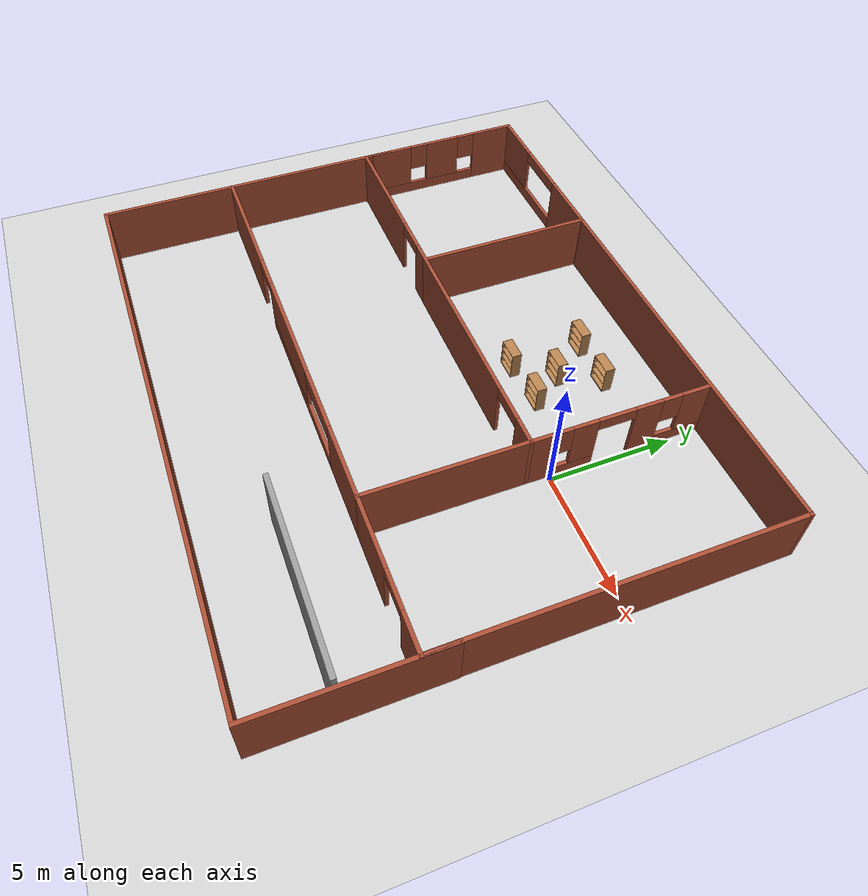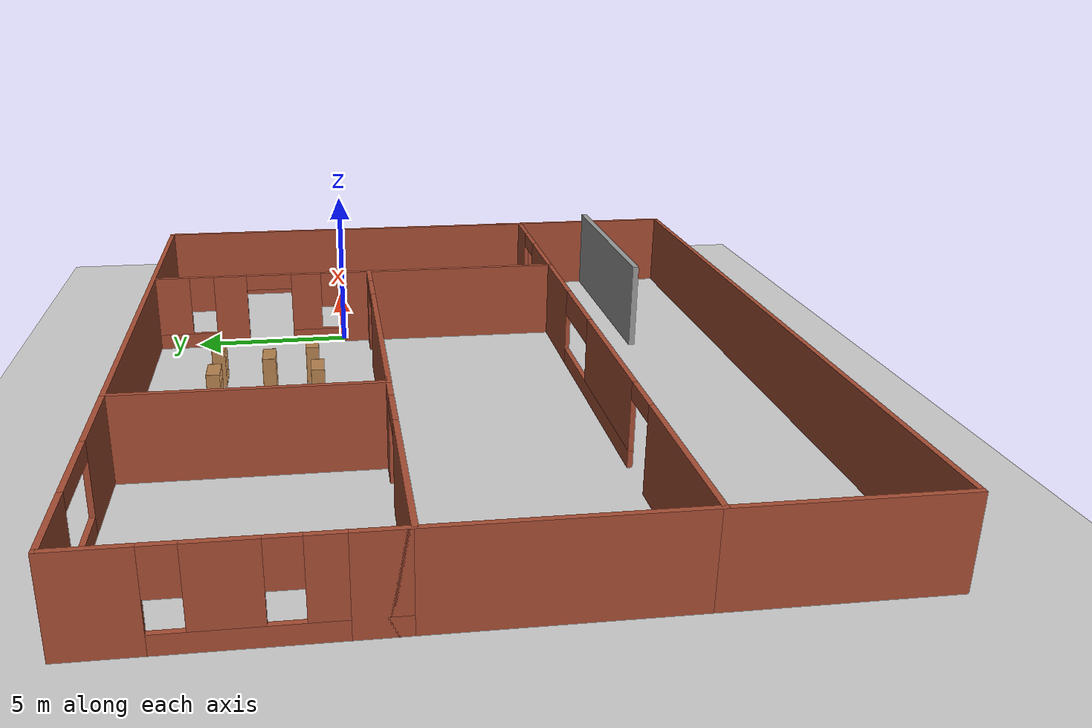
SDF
<sdf version="1.6">
 <world name="default">
  <model name="ground_plane">
   <static>1</static>
   <link name="link">
    <collision name="collision">
     <geometry><plane><normal>0 0 1</normal><size>100 100</size></plane></geometry>
     <surface><friction><ode><mu>100</mu><mu2>50</mu2></ode></friction></surface>
    </collision>
    <visual name="visual">
     <cast_shadows>0</cast_shadows>
     <geometry><plane><normal>0 0 1</normal><size>100 100</size></plane></geometry>
     <material>
      <script><uri>file://media/materials/scripts/gazebo.material</uri><name>Gazebo/Grey</name></script>
     </material>
    </visual>
   </link>
  </model>
  <model name="FourRoomObstacles">
   <pose>-6.06044 -3.26478 0 0 -0 0</pose>
   <link name="Wall_0">
    <collision name="Wall_0_Collision">
     <geometry><box><size>7.25 0.15 2.5</size></box></geometry>
     <pose>0 0 1.25 0 -0 0</pose>
    </collision>
    <visual name="Wall_0_Visual">
     <pose>0 0 1.25 0 -0 0</pose>
     <geometry><box><size>7.25 0.15 2.5</size></box></geometry>
     <material>
      <script><uri>file://media/materials/scripts/gazebo.material</uri><name>Gazebo/Bricks</name></script>
      <ambient>1 1 1 1</ambient>
     </material>
     <meta><layer>0</layer></meta>
    </visual>
    <pose>-4.1674 6.0064 0 0 0 -1.5708</pose>
   </link>
   <link name="Wall_1">
    <pose>0.848211 2.35 0 0 -0 0</pose>
    <visual name="Wall_1_Visual_0">
     <pose>-1.33123 0 1.25 0 -0 0</pose>
     <geometry><box><size>7.51932 0.15 2.5</size></box></geometry>
     <material>
      <script><uri>file://media/materials/scripts/gazebo.material</uri><name>Gazebo/Bricks</name></script>
      <ambient>1 1 1 1</ambient>
     </material>
     <meta><layer>0</layer></meta>
    </visual>
    <collision name="Wall_1_Collision_0">
     <geometry><box><size>7.51932 0.15 2.5</size></box></geometry>
     <pose>-1.33123 0 1.25 0 -0 0</pose>
    </collision>
    <visual name="Wall_1_Visual_1">
     <pose>4.50966 0 1.25 0 -0 0</pose>
     <geometry><box><size>1.16246 0.15 2.5</size></box></geometry>
     <material>
      <script><uri>file://media/materials/scripts/gazebo.material</uri><name>Gazebo/Bricks</name></script>
      <ambient>1 1 1 1</ambient>
     </material>
     <meta><layer>0</layer></meta>
    </visual>
    <collision name="Wall_1_Collision_1">
     <geometry><box><size>1.16246 0.15 2.5</size></box></geometry>
     <pose>4.50966 0 1.25 0 -0 0</pose>
    </collision>
    <visual name="Wall_1_Visual_2">
     <pose>3.17843 0 2.25 0 -0 0</pose>
     <geometry><box><size>1.5 0.15 0.5</size></box></geometry>
     <material>
      <script><uri>file://media/materials/scripts/gazebo.material</uri><name>Gazebo/Bricks</name></script>
      <ambient>1 1 1 1</ambient>
     </material>
     <meta><layer>0</layer></meta>
    </visual>
    <collision name="Wall_1_Collision_2">
     <geometry><box><size>1.5 0.15 0.5</size></box></geometry>
     <pose>3.17843 0 2.25 0 -0 0</pose>
    </collision>
   </link>
   <link name="Wall_10">
    <pose>-7.81118 2.3564 0 0 -0 0</pose>
    <visual name="Wall_10_Visual_0">
     <pose>-1.3934 0 1.25 0 -0 0</pose>
     <geometry><box><size>5.2132 0.15 2.5</size></box></geometry>
     <material>
      <script><uri>file://media/materials/scripts/gazebo.material</uri><name>Gazebo/Bricks</name></script>
      <ambient>1 1 1 1</ambient>
     </material>
     <meta><layer>0</layer></meta>
    </visual>
    <collision name="Wall_10_Collision_0">
     <geometry><box><size>5.2132 0.15 2.5</size></box></geometry>
     <pose>-1.3934 0 1.25 0 -0 0</pose>
    </collision>
    <visual name="Wall_10_Visual_1">
     <pose>3.3566 0 1.25 0 -0 0</pose>
     <geometry><box><size>1.2868 0.15 2.5</size></box></geometry>
     <material>
      <script><uri>file://media/materials/scripts/gazebo.material</uri><name>Gazebo/Bricks</name></script>
      <ambient>1 1 1 1</ambient>
     </material>
     <meta><layer>0</layer></meta>
    </visual>
    <collision name="Wall_10_Collision_1">
     <geometry><box><size>1.2868 0.15 2.5</size></box></geometry>
     <pose>3.3566 0 1.25 0 -0 0</pose>
    </collision>
    <visual name="Wall_10_Visual_2">
     <pose>1.9632 0 2.25 0 -0 0</pose>
     <geometry><box><size>1.5 0.15 0.5</size></box></geometry>
     <material>
      <script><uri>file://media/materials/scripts/gazebo.material</uri><name>Gazebo/Bricks</name></script>
      <ambient>1 1 1 1</ambient>
     </material>
     <meta><layer>0</layer></meta>
    </visual>
    <collision name="Wall_10_Collision_2">
     <geometry><box><size>1.5 0.15 0.5</size></box></geometry>
     <pose>1.9632 0 2.25 0 -0 0</pose>
    </collision>
   </link>
   <link name="Wall_12">
    <pose>-2.93618 -4 0 0 -0 3.14159</pose>
    <visual name="Wall_12_Visual_0">
     <pose>-7.28912 0 1.25 0 -0 0</pose>
     <geometry><box><size>3.17176 0.15 2.5</size></box></geometry>
     <material>
      <script><uri>file://media/materials/scripts/gazebo.material</uri><name>Gazebo/Bricks</name></script>
      <ambient>1 1 1 1</ambient>
     </material>
     <meta><layer>0</layer></meta>
    </visual>
    <collision name="Wall_12_Collision_0">
     <geometry><box><size>3.17176 0.15 2.5</size></box></geometry>
     <pose>-7.28912 0 1.25 0 -0 0</pose>
    </collision>
    <visual name="Wall_12_Visual_1">
     <pose>6.22094 0 1.25 0 -0 0</pose>
     <geometry><box><size>5.30812 0.15 2.5</size></box></geometry>
     <material>
      <script><uri>file://media/materials/scripts/gazebo.material</uri><name>Gazebo/Bricks</name></script>
      <ambient>1 1 1 1</ambient>
     </material>
     <meta><layer>0</layer></meta>
    </visual>
    <collision name="Wall_12_Collision_1">
     <geometry><box><size>5.30812 0.15 2.5</size></box></geometry>
     <pose>6.22094 0 1.25 0 -0 0</pose>
    </collision>
    <visual name="Wall_12_Visual_2">
     <pose>-1.81818 0 0.25 0 -0 0</pose>
     <geometry><box><size>7.77011 0.15 0.5</size></box></geometry>
     <material>
      <script><uri>file://media/materials/scripts/gazebo.material</uri><name>Gazebo/Bricks</name></script>
      <ambient>1 1 1 1</ambient>
     </material>
     <meta><layer>0</layer></meta>
    </visual>
    <collision name="Wall_12_Collision_2">
     <geometry><box><size>7.77011 0.15 0.5</size></box></geometry>
     <pose>-1.81818 0 0.25 0 -0 0</pose>
    </collision>
    <visual name="Wall_12_Visual_3">
     <pose>-0.418181 0 1.5 0 -0 0</pose>
     <geometry><box><size>4.97011 0.15 2</size></box></geometry>
     <material>
      <script><uri>file://media/materials/scripts/gazebo.material</uri><name>Gazebo/Bricks</name></script>
      <ambient>1 1 1 1</ambient>
     </material>
     <meta><layer>0</layer></meta>
    </visual>
    <collision name="Wall_12_Collision_3">
     <geometry><box><size>4.97011 0.15 2</size></box></geometry>
     <pose>-0.418181 0 1.5 0 -0 0</pose>
    </collision>
    <visual name="Wall_12_Visual_4">
     <pose>-4.30324 0 2.1 0 -0 0</pose>
     <geometry><box><size>2.8 0.15 0.8</size></box></geometry>
     <material>
      <script><uri>file://media/materials/scripts/gazebo.material</uri><name>Gazebo/Bricks</name></script>
      <ambient>1 1 1 1</ambient>
     </material>
     <meta><layer>0</layer></meta>
    </visual>
    <collision name="Wall_12_Collision_4">
     <geometry><box><size>2.8 0.15 0.8</size></box></geometry>
     <pose>-4.30324 0 2.1 0 -0 0</pose>
    </collision>
    <visual name="Wall_12_Visual_5">
     <pose>2.81688 0 2.25 0 -0 0</pose>
     <geometry><box><size>1.5 0.15 0.5</size></box></geometry>
     <material>
      <script><uri>file://media/materials/scripts/gazebo.material</uri><name>Gazebo/Bricks</name></script>
      <ambient>1 1 1 1</ambient>
     </material>
     <meta><layer>0</layer></meta>
    </visual>
    <collision name="Wall_12_Collision_5">
     <geometry><box><size>1.5 0.15 0.5</size></box></geometry>
     <pose>2.81688 0 2.25 0 -0 0</pose>
    </collision>
   </link>
   <link name="Wall_13">
    <collision name="Wall_13_Collision">
     <geometry><box><size>7.75 0.15 2.5</size></box></geometry>
     <pose>0 0 1.25 0 -0 0</pose>
    </collision>
    <visual name="Wall_13_Visual">
     <pose>0 0 1.25 0 -0 0</pose>
     <geometry><box><size>7.75 0.15 2.5</size></box></geometry>
     <material>
      <script><uri>file://media/materials/scripts/gazebo.material</uri><name>Gazebo/Bricks</name></script>
      <ambient>1 1 1 1</ambient>
     </material>
     <meta><layer>0</layer></meta>
    </visual>
    <pose>-11.7362 -0.2 0 0 -0 1.5708</pose>
   </link>
   <link name="Wall_15">
    <collision name="Wall_15_Collision">
     <geometry><box><size>5.75 0.15 2.5</size></box></geometry>
     <pose>0 0 1.25 0 -0 0</pose>
    </collision>
    <visual name="Wall_15_Visual">
     <pose>0 0 1.25 0 -0 0</pose>
     <geometry><box><size>5.75 0.15 2.5</size></box></geometry>
     <material>
      <script><uri>file://media/materials/scripts/gazebo.material</uri><name>Gazebo/Bricks</name></script>
      <ambient>1 1 1 1</ambient>
     </material>
     <meta><layer>0</layer></meta>
    </visual>
    <pose>-11.7362 -6.8 0 0 0 -1.5708</pose>
   </link>
   <link name="Wall_16">
    <collision name="Wall_16_Collision">
     <geometry><box><size>23.6224 0.15 2.5</size></box></geometry>
     <pose>0 0 1.25 0 -0 0</pose>
    </collision>
    <visual name="Wall_16_Visual">
     <pose>0 0 1.25 0 -0 0</pose>
     <geometry><box><size>23.6224 0.15 2.5</size></box></geometry>
     <material>
      <script><uri>file://media/materials/scripts/gazebo.material</uri><name>Gazebo/Bricks</name></script>
      <ambient>1 1 1 1</ambient>
     </material>
     <meta><layer>0</layer></meta>
    </visual>
    <pose>0 -9.6 0 0 -0 0</pose>
   </link>
   <link name="Wall_17">
    <collision name="Wall_17_Collision">
     <geometry><box><size>7 0.15 2.5</size></box></geometry>
     <pose>0 0 1.25 0 -0 0</pose>
    </collision>
    <visual name="Wall_17_Visual">
     <pose>0 0 1.25 0 -0 0</pose>
     <geometry><box><size>7 0.15 2.5</size></box></geometry>
     <material>
      <script><uri>file://media/materials/scripts/gazebo.material</uri><name>Gazebo/Bricks</name></script>
      <ambient>1 1 1 1</ambient>
     </material>
     <meta><layer>0</layer></meta>
    </visual>
    <pose>11.7362 -6.175 0 0 -0 1.5708</pose>
   </link>
   <link name="Wall_19">
    <pose>5.86382 5.9 0 0 -0 1.5708</pose>
    <visual name="Wall_19_Visual_0">
     <pose>-3.16087 0 1.25 0 -0 0</pose>
     <geometry><box><size>0.928264 0.15 2.5</size></box></geometry>
     <material>
      <script><uri>file://media/materials/scripts/gazebo.material</uri><name>Gazebo/Bricks</name></script>
      <ambient>1 1 1 1</ambient>
     </material>
     <meta><layer>0</layer></meta>
    </visual>
    <collision name="Wall_19_Collision_0">
     <geometry><box><size>0.928264 0.15 2.5</size></box></geometry>
     <pose>-3.16087 0 1.25 0 -0 0</pose>
    </collision>
    <visual name="Wall_19_Visual_1">
     <pose>1.15917 0 1.25 0 -0 0</pose>
     <geometry><box><size>1.09818 0.15 2.5</size></box></geometry>
     <material>
      <script><uri>file://media/materials/scripts/gazebo.material</uri><name>Gazebo/Bricks</name></script>
      <ambient>1 1 1 1</ambient>
     </material>
     <meta><layer>0</layer></meta>
    </visual>
    <collision name="Wall_19_Collision_1">
     <geometry><box><size>1.09818 0.15 2.5</size></box></geometry>
     <pose>1.15917 0 1.25 0 -0 0</pose>
    </collision>
    <visual name="Wall_19_Visual_2">
     <pose>-1.79333 0 0.25 0 -0 0</pose>
     <geometry><box><size>1.80682 0.15 0.5</size></box></geometry>
     <material>
      <script><uri>file://media/materials/scripts/gazebo.material</uri><name>Gazebo/Bricks</name></script>
      <ambient>1 1 1 1</ambient>
     </material>
     <meta><layer>0</layer></meta>
    </visual>
    <collision name="Wall_19_Collision_2">
     <geometry><box><size>1.80682 0.15 0.5</size></box></geometry>
     <pose>-1.79333 0 0.25 0 -0 0</pose>
    </collision>
    <visual name="Wall_19_Visual_3">
     <pose>2.66663 0 0.25 0 -0 0</pose>
     <geometry><box><size>1.91674 0.15 0.5</size></box></geometry>
     <material>
      <script><uri>file://media/materials/scripts/gazebo.material</uri><name>Gazebo/Bricks</name></script>
      <ambient>1 1 1 1</ambient>
     </material>
     <meta><layer>0</layer></meta>
    </visual>
    <collision name="Wall_19_Collision_3">
     <geometry><box><size>1.91674 0.15 0.5</size></box></geometry>
     <pose>2.66663 0 0.25 0 -0 0</pose>
    </collision>
    <visual name="Wall_19_Visual_4">
     <pose>-1.39333 0 1.5 0 -0 0</pose>
     <geometry><box><size>1.00682 0.15 2</size></box></geometry>
     <material>
      <script><uri>file://media/materials/scripts/gazebo.material</uri><name>Gazebo/Bricks</name></script>
      <ambient>1 1 1 1</ambient>
     </material>
     <meta><layer>0</layer></meta>
    </visual>
    <collision name="Wall_19_Collision_4">
     <geometry><box><size>1.00682 0.15 2</size></box></geometry>
     <pose>-1.39333 0 1.5 0 -0 0</pose>
    </collision>
    <visual name="Wall_19_Visual_5">
     <pose>-1.39333 0 1.5 0 -0 0</pose>
     <geometry><box><size>1.00682 0.15 2</size></box></geometry>
     <material>
      <script><uri>file://media/materials/scripts/gazebo.material</uri><name>Gazebo/Bricks</name></script>
      <ambient>1 1 1 1</ambient>
     </material>
     <meta><layer>0</layer></meta>
    </visual>
    <collision name="Wall_19_Collision_5">
     <geometry><box><size>1.00682 0.15 2</size></box></geometry>
     <pose>-1.39333 0 1.5 0 -0 0</pose>
    </collision>
    <visual name="Wall_19_Visual_6">
     <pose>3.06663 0 1.5 0 -0 0</pose>
     <geometry><box><size>1.11674 0.15 2</size></box></geometry>
     <material>
      <script><uri>file://media/materials/scripts/gazebo.material</uri><name>Gazebo/Bricks</name></script>
      <ambient>1 1 1 1</ambient>
     </material>
     <meta><layer>0</layer></meta>
    </visual>
    <collision name="Wall_19_Collision_6">
     <geometry><box><size>1.11674 0.15 2</size></box></geometry>
     <pose>3.06663 0 1.5 0 -0 0</pose>
    </collision>
    <visual name="Wall_19_Visual_7">
     <pose>-2.29674 0 1.9 0 -0 0</pose>
     <geometry><box><size>0.8 0.15 1.2</size></box></geometry>
     <material>
      <script><uri>file://media/materials/scripts/gazebo.material</uri><name>Gazebo/Bricks</name></script>
      <ambient>1 1 1 1</ambient>
     </material>
     <meta><layer>0</layer></meta>
    </visual>
    <collision name="Wall_19_Collision_7">
     <geometry><box><size>0.8 0.15 1.2</size></box></geometry>
     <pose>-2.29674 0 1.9 0 -0 0</pose>
    </collision>
    <visual name="Wall_19_Visual_8">
     <pose>2.10826 0 1.9 0 -0 0</pose>
     <geometry><box><size>0.8 0.15 1.2</size></box></geometry>
     <material>
      <script><uri>file://media/materials/scripts/gazebo.material</uri><name>Gazebo/Bricks</name></script>
      <ambient>1 1 1 1</ambient>
     </material>
     <meta><layer>0</layer></meta>
    </visual>
    <collision name="Wall_19_Collision_8">
     <geometry><box><size>0.8 0.15 1.2</size></box></geometry>
     <pose>2.10826 0 1.9 0 -0 0</pose>
    </collision>
    <visual name="Wall_19_Visual_9">
     <pose>-0.139921 0 2.25 0 -0 0</pose>
     <geometry><box><size>1.5 0.15 0.5</size></box></geometry>
     <material>
      <script><uri>file://media/materials/scripts/gazebo.material</uri><name>Gazebo/Bricks</name></script>
      <ambient>1 1 1 1</ambient>
     </material>
     <meta><layer>0</layer></meta>
    </visual>
    <collision name="Wall_19_Collision_9">
     <geometry><box><size>1.5 0.15 0.5</size></box></geometry>
     <pose>-0.139921 0 2.25 0 -0 0</pose>
    </collision>
    <visual name="Wall_19_Visual_10">
     <pose>-0.139921 0 2.25 0 -0 0</pose>
     <geometry><box><size>1.5 0.15 0.5</size></box></geometry>
     <material>
      <script><uri>file://media/materials/scripts/gazebo.material</uri><name>Gazebo/Bricks</name></script>
      <ambient>1 1 1 1</ambient>
     </material>
     <meta><layer>0</layer></meta>
    </visual>
    <collision name="Wall_19_Collision_10">
     <geometry><box><size>1.5 0.15 0.5</size></box></geometry>
     <pose>-0.139921 0 2.25 0 -0 0</pose>
    </collision>
   </link>
   <link name="Wall_2">
    <collision name="Wall_2_Collision">
     <geometry><box><size>6.5 0.15 2.5</size></box></geometry>
     <pose>0 0 1.25 0 -0 0</pose>
    </collision>
    <visual name="Wall_2_Visual">
     <pose>0 0 1.25 0 -0 0</pose>
     <geometry><box><size>6.5 0.15 2.5</size></box></geometry>
     <material>
      <script><uri>file://media/materials/scripts/gazebo.material</uri><name>Gazebo/Bricks</name></script>
      <ambient>1 1 1 1</ambient>
     </material>
     <meta><layer>0</layer></meta>
    </visual>
    <pose>5.86382 -0.825 0 0 0 -1.5708</pose>
   </link>
   <link name="Wall_3">
    <pose>8.78882 -4 0 0 -0 0</pose>
    <visual name="Wall_3_Visual_0">
     <pose>-1.54733 0 1.25 0 -0 0</pose>
     <geometry><box><size>2.90535 0.15 2.5</size></box></geometry>
     <material>
      <script><uri>file://media/materials/scripts/gazebo.material</uri><name>Gazebo/Bricks</name></script>
      <ambient>1 1 1 1</ambient>
     </material>
     <meta><layer>0</layer></meta>
    </visual>
    <collision name="Wall_3_Collision_0">
     <geometry><box><size>2.90535 0.15 2.5</size></box></geometry>
     <pose>-1.54733 0 1.25 0 -0 0</pose>
    </collision>
    <visual name="Wall_3_Visual_1">
     <pose>2.20268 0 1.25 0 -0 0</pose>
     <geometry><box><size>1.59465 0.15 2.5</size></box></geometry>
     <material>
      <script><uri>file://media/materials/scripts/gazebo.material</uri><name>Gazebo/Bricks</name></script>
      <ambient>1 1 1 1</ambient>
     </material>
     <meta><layer>0</layer></meta>
    </visual>
    <collision name="Wall_3_Collision_1">
     <geometry><box><size>1.59465 0.15 2.5</size></box></geometry>
     <pose>2.20268 0 1.25 0 -0 0</pose>
    </collision>
    <visual name="Wall_3_Visual_2">
     <pose>0.655349 0 2.25 0 -0 0</pose>
     <geometry><box><size>1.5 0.15 0.5</size></box></geometry>
     <material>
      <script><uri>file://media/materials/scripts/gazebo.material</uri><name>Gazebo/Bricks</name></script>
      <ambient>1 1 1 1</ambient>
     </material>
     <meta><layer>0</layer></meta>
    </visual>
    <collision name="Wall_3_Collision_2">
     <geometry><box><size>1.5 0.15 0.5</size></box></geometry>
     <pose>0.655349 0 2.25 0 -0 0</pose>
    </collision>
   </link>
   <link name="Wall_4">
    <collision name="Wall_4_Collision">
     <geometry><box><size>13.75 0.15 2.5</size></box></geometry>
     <pose>0 0 1.25 0 -0 0</pose>
    </collision>
    <visual name="Wall_4_Visual">
     <pose>0 0 1.25 0 -0 0</pose>
     <geometry><box><size>13.75 0.15 2.5</size></box></geometry>
     <material>
      <script><uri>file://media/materials/scripts/gazebo.material</uri><name>Gazebo/Bricks</name></script>
      <ambient>1 1 1 1</ambient>
     </material>
     <meta><layer>0</layer></meta>
    </visual>
    <pose>11.7138 2.8 0 0 -0 1.5708</pose>
   </link>
   <link name="Wall_5">
    <collision name="Wall_5_Collision">
     <geometry><box><size>16 0.15 2.5</size></box></geometry>
     <pose>0 0 1.25 0 -0 0</pose>
    </collision>
    <visual name="Wall_5_Visual">
     <pose>0 0 1.25 0 -0 0</pose>
     <geometry><box><size>16 0.15 2.5</size></box></geometry>
     <material>
      <script><uri>file://media/materials/scripts/gazebo.material</uri><name>Gazebo/Bricks</name></script>
      <ambient>1 1 1 1</ambient>
     </material>
     <meta><layer>0</layer></meta>
    </visual>
    <pose>3.78882 9.6 0 0 -0 3.14159</pose>
   </link>
   <link name="Wall_8">
    <pose>-7.93618 9.6 0 0 -0 3.14159</pose>
    <visual name="Wall_8_Visual_0">
     <pose>-2.47263 0 1.25 0 -0 0</pose>
     <geometry><box><size>2.80473 0.15 2.5</size></box></geometry>
     <material>
      <script><uri>file://media/materials/scripts/gazebo.material</uri><name>Gazebo/Bricks</name></script>
      <ambient>1 1 1 1</ambient>
     </material>
     <meta><layer>0</layer></meta>
    </visual>
    <collision name="Wall_8_Collision_0">
     <geometry><box><size>2.80473 0.15 2.5</size></box></geometry>
     <pose>-2.47263 0 1.25 0 -0 0</pose>
    </collision>
    <visual name="Wall_8_Visual_1">
     <pose>1.40237 0 0.25 0 -0 0</pose>
     <geometry><box><size>4.94527 0.15 0.5</size></box></geometry>
     <material>
      <script><uri>file://media/materials/scripts/gazebo.material</uri><name>Gazebo/Bricks</name></script>
      <ambient>1 1 1 1</ambient>
     </material>
     <meta><layer>0</layer></meta>
    </visual>
    <collision name="Wall_8_Collision_1">
     <geometry><box><size>4.94527 0.15 0.5</size></box></geometry>
     <pose>1.40237 0 0.25 0 -0 0</pose>
    </collision>
    <visual name="Wall_8_Visual_2">
     <pose>2.65237 0 1.5 0 -0 0</pose>
     <geometry><box><size>2.44527 0.15 2</size></box></geometry>
     <material>
      <script><uri>file://media/materials/scripts/gazebo.material</uri><name>Gazebo/Bricks</name></script>
      <ambient>1 1 1 1</ambient>
     </material>
     <meta><layer>0</layer></meta>
    </visual>
    <collision name="Wall_8_Collision_2">
     <geometry><box><size>2.44527 0.15 2</size></box></geometry>
     <pose>2.65237 0 1.5 0 -0 0</pose>
    </collision>
    <visual name="Wall_8_Visual_3">
     <pose>0.179733 0 2.25 0 -0 0</pose>
     <geometry><box><size>2.5 0.15 0.5</size></box></geometry>
     <material>
      <script><uri>file://media/materials/scripts/gazebo.material</uri><name>Gazebo/Bricks</name></script>
      <ambient>1 1 1 1</ambient>
     </material>
     <meta><layer>0</layer></meta>
    </visual>
    <collision name="Wall_8_Collision_3">
     <geometry><box><size>2.5 0.15 0.5</size></box></geometry>
     <pose>0.179733 0 2.25 0 -0 0</pose>
    </collision>
   </link>
   <link name="Wall_9">
    <pose>-11.7362 6.0314 0 0 0 -1.5708</pose>
    <visual name="Wall_9_Visual_0">
     <pose>-2.67374 0 1.25 0 -0 0</pose>
     <geometry><box><size>1.93973 0.15 2.5</size></box></geometry>
     <material>
      <script><uri>file://media/materials/scripts/gazebo.material</uri><name>Gazebo/Bricks</name></script>
      <ambient>1 1 1 1</ambient>
     </material>
     <meta><layer>0</layer></meta>
    </visual>
    <collision name="Wall_9_Collision_0">
     <geometry><box><size>1.93973 0.15 2.5</size></box></geometry>
     <pose>-2.67374 0 1.25 0 -0 0</pose>
    </collision>
    <visual name="Wall_9_Visual_1">
     <pose>0.969864 0 0.25 0 -0 0</pose>
     <geometry><box><size>5.34747 0.15 0.5</size></box></geometry>
     <material>
      <script><uri>file://media/materials/scripts/gazebo.material</uri><name>Gazebo/Bricks</name></script>
      <ambient>1 1 1 1</ambient>
     </material>
     <meta><layer>0</layer></meta>
    </visual>
    <collision name="Wall_9_Collision_1">
     <geometry><box><size>5.34747 0.15 0.5</size></box></geometry>
     <pose>0.969864 0 0.25 0 -0 0</pose>
    </collision>
    <visual name="Wall_9_Visual_2">
     <pose>-0.110852 0 1.5 0 -0 0</pose>
     <geometry><box><size>1.58604 0.15 2</size></box></geometry>
     <material>
      <script><uri>file://media/materials/scripts/gazebo.material</uri><name>Gazebo/Bricks</name></script>
      <ambient>1 1 1 1</ambient>
     </material>
     <meta><layer>0</layer></meta>
    </visual>
    <collision name="Wall_9_Collision_2">
     <geometry><box><size>1.58604 0.15 2</size></box></geometry>
     <pose>-0.110852 0 1.5 0 -0 0</pose>
    </collision>
    <visual name="Wall_9_Visual_3">
     <pose>2.56288 0 1.5 0 -0 0</pose>
     <geometry><box><size>2.16143 0.15 2</size></box></geometry>
     <material>
      <script><uri>file://media/materials/scripts/gazebo.material</uri><name>Gazebo/Bricks</name></script>
      <ambient>1 1 1 1</ambient>
     </material>
     <meta><layer>0</layer></meta>
    </visual>
    <collision name="Wall_9_Collision_3">
     <geometry><box><size>2.16143 0.15 2</size></box></geometry>
     <pose>2.56288 0 1.5 0 -0 0</pose>
    </collision>
    <visual name="Wall_9_Visual_4">
     <pose>-1.30387 0 1.9 0 -0 0</pose>
     <geometry><box><size>0.8 0.15 1.2</size></box></geometry>
     <material>
      <script><uri>file://media/materials/scripts/gazebo.material</uri><name>Gazebo/Bricks</name></script>
      <ambient>1 1 1 1</ambient>
     </material>
     <meta><layer>0</layer></meta>
    </visual>
    <collision name="Wall_9_Collision_4">
     <geometry><box><size>0.8 0.15 1.2</size></box></geometry>
     <pose>-1.30387 0 1.9 0 -0 0</pose>
    </collision>
    <visual name="Wall_9_Visual_5">
     <pose>1.08217 0 1.9 0 -0 0</pose>
     <geometry><box><size>0.8 0.15 1.2</size></box></geometry>
     <material>
      <script><uri>file://media/materials/scripts/gazebo.material</uri><name>Gazebo/Bricks</name></script>
      <ambient>1 1 1 1</ambient>
     </material>
     <meta><layer>0</layer></meta>
    </visual>
    <collision name="Wall_9_Collision_5">
     <geometry><box><size>0.8 0.15 1.2</size></box></geometry>
     <pose>1.08217 0 1.9 0 -0 0</pose>
    </collision>
   </link>
   <static>1</static>
  </model>
  <model name="grey_wall_1">
   <static>1</static>
   <link name="link">
    <pose>0 0 1.4 0 -0 0</pose>
    <collision name="collision"><geometry><box><size>7.5 0.2 2.8</size></box></geometry></collision>
    <visual name="visual">
     <cast_shadows>0</cast_shadows>
     <geometry><box><size>7.5 0.2 2.8</size></box></geometry>
     <material>
      <script>
       <uri>model://grey_wall/materials/scripts</uri>
       <uri>model://grey_wall/materials/textures</uri>
       <name>vrc/grey_wall</name>
      </script>
     </material>
    </visual>
   </link>
   <pose>1.83669 -9.87834 0 0 -0 0</pose>
  </model>
  <model name="bookshelf_2">
   <static>1</static>
   <link name="link">
    <inertial><mass>1</mass></inertial>
    <collision name="back">
     <pose>0 0.005 0.6 0 -0 0</pose>
     <geometry><box><size>0.9 0.01 1.2</size></box></geometry>
    </collision>
    <visual name="visual1">
     <pose>0 0.005 0.6 0 -0 0</pose>
     <geometry><box><size>0.9 0.01 1.2</size></box></geometry>
     <material>
      <script><uri>file://media/materials/scripts/gazebo.material</uri><name>Gazebo/Wood</name></script>
     </material>
    </visual>
    <collision name="left_side">
     <pose>0.45 -0.195 0.6 0 -0 0</pose>
     <geometry><box><size>0.02 0.4 1.2</size></box></geometry>
    </collision>
    <visual name="visual2">
     <pose>0.45 -0.195 0.6 0 -0 0</pose>
     <geometry><box><size>0.02 0.4 1.2</size></box></geometry>
     <material>
      <script><uri>file://media/materials/scripts/gazebo.material</uri><name>Gazebo/Wood</name></script>
     </material>
    </visual>
    <collision name="right_side">
     <pose>-0.45 -0.195 0.6 0 -0 0</pose>
     <geometry><box><size>0.02 0.4 1.2</size></box></geometry>
    </collision>
    <visual name="visual3">
     <pose>-0.45 -0.195 0.6 0 -0 0</pose>
     <geometry><box><size>0.02 0.4 1.2</size></box></geometry>
     <material>
      <script><uri>file://media/materials/scripts/gazebo.material</uri><name>Gazebo/Wood</name></script>
     </material>
    </visual>
    <collision name="bottom">
     <pose>0 -0.195 0.03 0 -0 0</pose>
     <geometry><box><size>0.88 0.4 0.06</size></box></geometry>
    </collision>
    <visual name="visual4">
     <pose>0 -0.195 0.03 0 -0 0</pose>
     <geometry><box><size>0.88 0.4 0.06</size></box></geometry>
     <material>
      <script><uri>file://media/materials/scripts/gazebo.material</uri><name>Gazebo/Wood</name></script>
     </material>
    </visual>
    <collision name="top">
     <pose>0 -0.195 1.19 0 -0 0</pose>
     <geometry><box><size>0.88 0.4 0.02</size></box></geometry>
    </collision>
    <visual name="visual5">
     <pose>0 -0.195 1.19 0 -0 0</pose>
     <geometry><box><size>0.88 0.4 0.02</size></box></geometry>
     <material>
      <script><uri>file://media/materials/scripts/gazebo.material</uri><name>Gazebo/Wood</name></script>
     </material>
    </visual>
    <collision name="low_shelf">
     <pose>0 -0.195 0.43 0 -0 0</pose>
     <geometry><box><size>0.88 0.4 0.02</size></box></geometry>
    </collision>
    <visual name="visual6">
     <pose>0 -0.195 0.43 0 -0 0</pose>
     <geometry><box><size>0.88 0.4 0.02</size></box></geometry>
     <material>
      <script><uri>file://media/materials/scripts/gazebo.material</uri><name>Gazebo/Wood</name></script>
     </material>
    </visual>
    <collision name="high_shelf">
     <pose>0 -0.195 0.8 0 -0 0</pose>
     <geometry><box><size>0.88 0.4 0.02</size></box></geometry>
    </collision>
    <visual name="visual7">
     <pose>0 -0.195 0.8 0 -0 0</pose>
     <geometry><box><size>0.88 0.4 0.02</size></box></geometry>
     <material>
      <script><uri>file://media/materials/scripts/gazebo.material</uri><name>Gazebo/Wood</name></script>
     </material>
    </visual>
   </link>
   <pose>-5.49919 4.22457 0 0 -0 0</pose>
  </model>
  <model name="bookshelf_3">
   <static>1</static>
   <link name="link">
    <inertial><mass>1</mass></inertial>
    <collision name="back">
     <pose>0 0.005 0.6 0 -0 0</pose>
     <geometry><box><size>0.9 0.01 1.2</size></box></geometry>
    </collision>
    <visual name="visual1">
     <pose>0 0.005 0.6 0 -0 0</pose>
     <geometry><box><size>0.9 0.01 1.2</size></box></geometry>
     <material>
      <script><uri>file://media/materials/scripts/gazebo.material</uri><name>Gazebo/Wood</name></script>
     </material>
    </visual>
    <collision name="left_side">
     <pose>0.45 -0.195 0.6 0 -0 0</pose>
     <geometry><box><size>0.02 0.4 1.2</size></box></geometry>
    </collision>
    <visual name="visual2">
     <pose>0.45 -0.195 0.6 0 -0 0</pose>
     <geometry><box><size>0.02 0.4 1.2</size></box></geometry>
     <material>
      <script><uri>file://media/materials/scripts/gazebo.material</uri><name>Gazebo/Wood</name></script>
     </material>
    </visual>
    <collision name="right_side">
     <pose>-0.45 -0.195 0.6 0 -0 0</pose>
     <geometry><box><size>0.02 0.4 1.2</size></box></geometry>
    </collision>
    <visual name="visual3">
     <pose>-0.45 -0.195 0.6 0 -0 0</pose>
     <geometry><box><size>0.02 0.4 1.2</size></box></geometry>
     <material>
      <script><uri>file://media/materials/scripts/gazebo.material</uri><name>Gazebo/Wood</name></script>
     </material>
    </visual>
    <collision name="bottom">
     <pose>0 -0.195 0.03 0 -0 0</pose>
     <geometry><box><size>0.88 0.4 0.06</size></box></geometry>
    </collision>
    <visual name="visual4">
     <pose>0 -0.195 0.03 0 -0 0</pose>
     <geometry><box><size>0.88 0.4 0.06</size></box></geometry>
     <material>
      <script><uri>file://media/materials/scripts/gazebo.material</uri><name>Gazebo/Wood</name></script>
     </material>
    </visual>
    <collision name="top">
     <pose>0 -0.195 1.19 0 -0 0</pose>
     <geometry><box><size>0.88 0.4 0.02</size></box></geometry>
    </collision>
    <visual name="visual5">
     <pose>0 -0.195 1.19 0 -0 0</pose>
     <geometry><box><size>0.88 0.4 0.02</size></box></geometry>
     <material>
      <script><uri>file://media/materials/scripts/gazebo.material</uri><name>Gazebo/Wood</name></script>
     </material>
    </visual>
    <collision name="low_shelf">
     <pose>0 -0.195 0.43 0 -0 0</pose>
     <geometry><box><size>0.88 0.4 0.02</size></box></geometry>
    </collision>
    <visual name="visual6">
     <pose>0 -0.195 0.43 0 -0 0</pose>
     <geometry><box><size>0.88 0.4 0.02</size></box></geometry>
     <material>
      <script><uri>file://media/materials/scripts/gazebo.material</uri><name>Gazebo/Wood</name></script>
     </material>
    </visual>
    <collision name="high_shelf">
     <pose>0 -0.195 0.8 0 -0 0</pose>
     <geometry><box><size>0.88 0.4 0.02</size></box></geometry>
    </collision>
    <visual name="visual7">
     <pose>0 -0.195 0.8 0 -0 0</pose>
     <geometry><box><size>0.88 0.4 0.02</size></box></geometry>
     <material>
      <script><uri>file://media/materials/scripts/gazebo.material</uri><name>Gazebo/Wood</name></script>
     </material>
    </visual>
   </link>
   <pose>-3.50577 4.20859 0 0 -0 0</pose>
  </model>
  <model name="bookshelf_5">
   <static>1</static>
   <link name="link">
    <inertial><mass>1</mass></inertial>
    <collision name="back">
     <pose>0 0.005 0.6 0 -0 0</pose>
     <geometry><box><size>0.9 0.01 1.2</size></box></geometry>
    </collision>
    <visual name="visual1">
     <pose>0 0.005 0.6 0 -0 0</pose>
     <geometry><box><size>0.9 0.01 1.2</size></box></geometry>
     <material>
      <script><uri>file://media/materials/scripts/gazebo.material</uri><name>Gazebo/Wood</name></script>
     </material>
    </visual>
    <collision name="left_side">
     <pose>0.45 -0.195 0.6 0 -0 0</pose>
     <geometry><box><size>0.02 0.4 1.2</size></box></geometry>
    </collision>
    <visual name="visual2">
     <pose>0.45 -0.195 0.6 0 -0 0</pose>
     <geometry><box><size>0.02 0.4 1.2</size></box></geometry>
     <material>
      <script><uri>file://media/materials/scripts/gazebo.material</uri><name>Gazebo/Wood</name></script>
     </material>
    </visual>
    <collision name="right_side">
     <pose>-0.45 -0.195 0.6 0 -0 0</pose>
     <geometry><box><size>0.02 0.4 1.2</size></box></geometry>
    </collision>
    <visual name="visual3">
     <pose>-0.45 -0.195 0.6 0 -0 0</pose>
     <geometry><box><size>0.02 0.4 1.2</size></box></geometry>
     <material>
      <script><uri>file://media/materials/scripts/gazebo.material</uri><name>Gazebo/Wood</name></script>
     </material>
    </visual>
    <collision name="bottom">
     <pose>0 -0.195 0.03 0 -0 0</pose>
     <geometry><box><size>0.88 0.4 0.06</size></box></geometry>
    </collision>
    <visual name="visual4">
     <pose>0 -0.195 0.03 0 -0 0</pose>
     <geometry><box><size>0.88 0.4 0.06</size></box></geometry>
     <material>
      <script><uri>file://media/materials/scripts/gazebo.material</uri><name>Gazebo/Wood</name></script>
     </material>
    </visual>
    <collision name="top">
     <pose>0 -0.195 1.19 0 -0 0</pose>
     <geometry><box><size>0.88 0.4 0.02</size></box></geometry>
    </collision>
    <visual name="visual5">
     <pose>0 -0.195 1.19 0 -0 0</pose>
     <geometry><box><size>0.88 0.4 0.02</size></box></geometry>
     <material>
      <script><uri>file://media/materials/scripts/gazebo.material</uri><name>Gazebo/Wood</name></script>
     </material>
    </visual>
    <collision name="low_shelf">
     <pose>0 -0.195 0.43 0 -0 0</pose>
     <geometry><box><size>0.88 0.4 0.02</size></box></geometry>
    </collision>
    <visual name="visual6">
     <pose>0 -0.195 0.43 0 -0 0</pose>
     <geometry><box><size>0.88 0.4 0.02</size></box></geometry>
     <material>
      <script><uri>file://media/materials/scripts/gazebo.material</uri><name>Gazebo/Wood</name></script>
     </material>
    </visual>
    <collision name="high_shelf">
     <pose>0 -0.195 0.8 0 -0 0</pose>
     <geometry><box><size>0.88 0.4 0.02</size></box></geometry>
    </collision>
    <visual name="visual7">
     <pose>0 -0.195 0.8 0 -0 0</pose>
     <geometry><box><size>0.88 0.4 0.02</size></box></geometry>
     <material>
      <script><uri>file://media/materials/scripts/gazebo.material</uri><name>Gazebo/Wood</name></script>
     </material>
    </visual>
   </link>
   <pose>-4.38704 2.61677 0 0 -0 0</pose>
  </model>
  <model name="bookshelf_7">
   <static>1</static>
   <link name="link">
    <inertial><mass>1</mass></inertial>
    <collision name="back">
     <pose>0 0.005 0.6 0 -0 0</pose>
     <geometry><box><size>0.9 0.01 1.2</size></box></geometry>
    </collision>
    <visual name="visual1">
     <pose>0 0.005 0.6 0 -0 0</pose>
     <geometry><box><size>0.9 0.01 1.2</size></box></geometry>
     <material>
      <script><uri>file://media/materials/scripts/gazebo.material</uri><name>Gazebo/Wood</name></script>
     </material>
    </visual>
    <collision name="left_side">
     <pose>0.45 -0.195 0.6 0 -0 0</pose>
     <geometry><box><size>0.02 0.4 1.2</size></box></geometry>
    </collision>
    <visual name="visual2">
     <pose>0.45 -0.195 0.6 0 -0 0</pose>
     <geometry><box><size>0.02 0.4 1.2</size></box></geometry>
     <material>
      <script><uri>file://media/materials/scripts/gazebo.material</uri><name>Gazebo/Wood</name></script>
     </material>
    </visual>
    <collision name="right_side">
     <pose>-0.45 -0.195 0.6 0 -0 0</pose>
     <geometry><box><size>0.02 0.4 1.2</size></box></geometry>
    </collision>
    <visual name="visual3">
     <pose>-0.45 -0.195 0.6 0 -0 0</pose>
     <geometry><box><size>0.02 0.4 1.2</size></box></geometry>
     <material>
      <script><uri>file://media/materials/scripts/gazebo.material</uri><name>Gazebo/Wood</name></script>
     </material>
    </visual>
    <collision name="bottom">
     <pose>0 -0.195 0.03 0 -0 0</pose>
     <geometry><box><size>0.88 0.4 0.06</size></box></geometry>
    </collision>
    <visual name="visual4">
     <pose>0 -0.195 0.03 0 -0 0</pose>
     <geometry><box><size>0.88 0.4 0.06</size></box></geometry>
     <material>
      <script><uri>file://media/materials/scripts/gazebo.material</uri><name>Gazebo/Wood</name></script>
     </material>
    </visual>
    <collision name="top">
     <pose>0 -0.195 1.19 0 -0 0</pose>
     <geometry><box><size>0.88 0.4 0.02</size></box></geometry>
    </collision>
    <visual name="visual5">
     <pose>0 -0.195 1.19 0 -0 0</pose>
     <geometry><box><size>0.88 0.4 0.02</size></box></geometry>
     <material>
      <script><uri>file://media/materials/scripts/gazebo.material</uri><name>Gazebo/Wood</name></script>
     </material>
    </visual>
    <collision name="low_shelf">
     <pose>0 -0.195 0.43 0 -0 0</pose>
     <geometry><box><size>0.88 0.4 0.02</size></box></geometry>
    </collision>
    <visual name="visual6">
     <pose>0 -0.195 0.43 0 -0 0</pose>
     <geometry><box><size>0.88 0.4 0.02</size></box></geometry>
     <material>
      <script><uri>file://media/materials/scripts/gazebo.material</uri><name>Gazebo/Wood</name></script>
     </material>
    </visual>
    <collision name="high_shelf">
     <pose>0 -0.195 0.8 0 -0 0</pose>
     <geometry><box><size>0.88 0.4 0.02</size></box></geometry>
    </collision>
    <visual name="visual7">
     <pose>0 -0.195 0.8 0 -0 0</pose>
     <geometry><box><size>0.88 0.4 0.02</size></box></geometry>
     <material>
      <script><uri>file://media/materials/scripts/gazebo.material</uri><name>Gazebo/Wood</name></script>
     </material>
    </visual>
   </link>
   <pose>-5.46458 1.13472 0 0 -0 0</pose>
  </model>
  <model name="bookshelf_8">
   <static>1</static>
   <link name="link">
    <inertial><mass>1</mass></inertial>
    <collision name="back">
     <pose>0 0.005 0.6 0 -0 0</pose>
     <geometry><box><size>0.9 0.01 1.2</size></box></geometry>
    </collision>
    <visual name="visual1">
     <pose>0 0.005 0.6 0 -0 0</pose>
     <geometry><box><size>0.9 0.01 1.2</size></box></geometry>
     <material>
      <script><uri>file://media/materials/scripts/gazebo.material</uri><name>Gazebo/Wood</name></script>
     </material>
    </visual>
    <collision name="left_side">
     <pose>0.45 -0.195 0.6 0 -0 0</pose>
     <geometry><box><size>0.02 0.4 1.2</size></box></geometry>
    </collision>
    <visual name="visual2">
     <pose>0.45 -0.195 0.6 0 -0 0</pose>
     <geometry><box><size>0.02 0.4 1.2</size></box></geometry>
     <material>
      <script><uri>file://media/materials/scripts/gazebo.material</uri><name>Gazebo/Wood</name></script>
     </material>
    </visual>
    <collision name="right_side">
     <pose>-0.45 -0.195 0.6 0 -0 0</pose>
     <geometry><box><size>0.02 0.4 1.2</size></box></geometry>
    </collision>
    <visual name="visual3">
     <pose>-0.45 -0.195 0.6 0 -0 0</pose>
     <geometry><box><size>0.02 0.4 1.2</size></box></geometry>
     <material>
      <script><uri>file://media/materials/scripts/gazebo.material</uri><name>Gazebo/Wood</name></script>
     </material>
    </visual>
    <collision name="bottom">
     <pose>0 -0.195 0.03 0 -0 0</pose>
     <geometry><box><size>0.88 0.4 0.06</size></box></geometry>
    </collision>
    <visual name="visual4">
     <pose>0 -0.195 0.03 0 -0 0</pose>
     <geometry><box><size>0.88 0.4 0.06</size></box></geometry>
     <material>
      <script><uri>file://media/materials/scripts/gazebo.material</uri><name>Gazebo/Wood</name></script>
     </material>
    </visual>
    <collision name="top">
     <pose>0 -0.195 1.19 0 -0 0</pose>
     <geometry><box><size>0.88 0.4 0.02</size></box></geometry>
    </collision>
    <visual name="visual5">
     <pose>0 -0.195 1.19 0 -0 0</pose>
     <geometry><box><size>0.88 0.4 0.02</size></box></geometry>
     <material>
      <script><uri>file://media/materials/scripts/gazebo.material</uri><name>Gazebo/Wood</name></script>
     </material>
    </visual>
    <collision name="low_shelf">
     <pose>0 -0.195 0.43 0 -0 0</pose>
     <geometry><box><size>0.88 0.4 0.02</size></box></geometry>
    </collision>
    <visual name="visual6">
     <pose>0 -0.195 0.43 0 -0 0</pose>
     <geometry><box><size>0.88 0.4 0.02</size></box></geometry>
     <material>
      <script><uri>file://media/materials/scripts/gazebo.material</uri><name>Gazebo/Wood</name></script>
     </material>
    </visual>
    <collision name="high_shelf">
     <pose>0 -0.195 0.8 0 -0 0</pose>
     <geometry><box><size>0.88 0.4 0.02</size></box></geometry>
    </collision>
    <visual name="visual7">
     <pose>0 -0.195 0.8 0 -0 0</pose>
     <geometry><box><size>0.88 0.4 0.02</size></box></geometry>
     <material>
      <script><uri>file://media/materials/scripts/gazebo.material</uri><name>Gazebo/Wood</name></script>
     </material>
    </visual>
   </link>
   <pose>-3.54143 1.29175 0 0 -0 0</pose>
  </model>
 </world>
</sdf>
